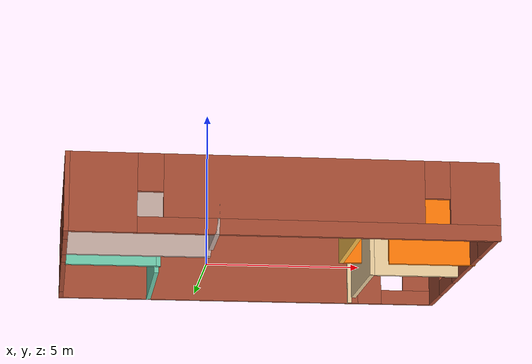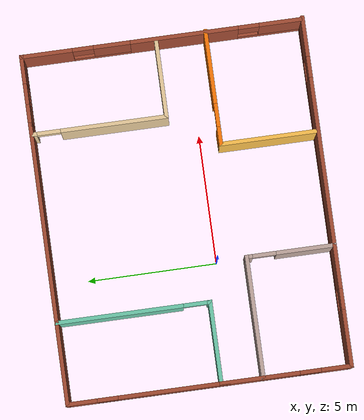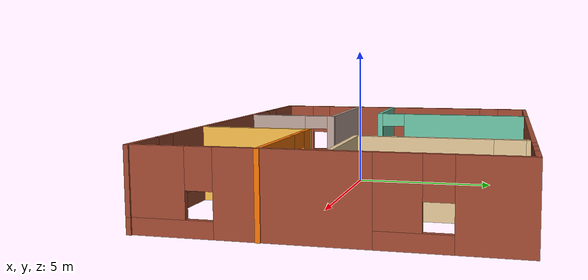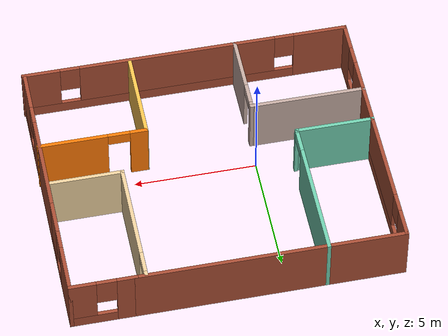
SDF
<?xml version='1.0'?>
<sdf version='1.7'>
  <model name='new_building'>
    <pose>2.035 0.93 0 0 -0 0</pose>
    <link name='Wall_0'>
      <pose>0 -5.4 0 0 -0 0</pose>
      <visual name='Wall_0_Visual_0'>
        <pose>-5.63828 0 1.25 0 -0 0</pose>
        <geometry>
          <box>
            <size>2.22345 0.15 2.5</size>
          </box>
        </geometry>
        <material>
          <script>
            <uri>file://media/materials/scripts/gazebo.material</uri>
            <name>Gazebo/Bricks</name>
          </script>
          <ambient>0.996078 0.47451 0.0196078 1</ambient>
        </material>
        <meta>
          <layer>0</layer>
        </meta>
      </visual>
      <collision name='Wall_0_Collision_0'>
        <geometry>
          <box>
            <size>2.22345 0.15 2.5</size>
          </box>
        </geometry>
        <pose>-5.63828 0 1.25 0 -0 0</pose>
      </collision>
      <visual name='Wall_0_Visual_1'>
        <pose>1.11173 0 0.25 0 -0 0</pose>
        <geometry>
          <box>
            <size>11.2766 0.15 0.5</size>
          </box>
        </geometry>
        <material>
          <script>
            <uri>file://media/materials/scripts/gazebo.material</uri>
            <name>Gazebo/Bricks</name>
          </script>
          <ambient>0.996078 0.47451 0.0196078 1</ambient>
        </material>
        <meta>
          <layer>0</layer>
        </meta>
      </visual>
      <collision name='Wall_0_Collision_1'>
        <geometry>
          <box>
            <size>11.2766 0.15 0.5</size>
          </box>
        </geometry>
        <pose>1.11173 0 0.25 0 -0 0</pose>
      </collision>
      <visual name='Wall_0_Visual_2'>
        <pose>0.325624 0 1.5 0 -0 0</pose>
        <geometry>
          <box>
            <size>8.10435 0.15 2</size>
          </box>
        </geometry>
        <material>
          <script>
            <uri>file://media/materials/scripts/gazebo.material</uri>
            <name>Gazebo/Bricks</name>
          </script>
          <ambient>0.996078 0.47451 0.0196078 1</ambient>
        </material>
        <meta>
          <layer>0</layer>
        </meta>
      </visual>
      <collision name='Wall_0_Collision_2'>
        <geometry>
          <box>
            <size>8.10435 0.15 2</size>
          </box>
        </geometry>
        <pose>0.325624 0 1.5 0 -0 0</pose>
      </collision>
      <visual name='Wall_0_Visual_3'>
        <pose>5.9639 0 1.5 0 -0 0</pose>
        <geometry>
          <box>
            <size>1.5722 0.15 2</size>
          </box>
        </geometry>
        <material>
          <script>
            <uri>file://media/materials/scripts/gazebo.material</uri>
            <name>Gazebo/Bricks</name>
          </script>
          <ambient>0.996078 0.47451 0.0196078 1</ambient>
        </material>
        <meta>
          <layer>0</layer>
        </meta>
      </visual>
      <collision name='Wall_0_Collision_3'>
        <geometry>
          <box>
            <size>1.5722 0.15 2</size>
          </box>
        </geometry>
        <pose>5.9639 0 1.5 0 -0 0</pose>
      </collision>
      <visual name='Wall_0_Visual_4'>
        <pose>-4.12655 0 1.9 0 -0 0</pose>
        <geometry>
          <box>
            <size>0.8 0.15 1.2</size>
          </box>
        </geometry>
        <material>
          <script>
            <uri>file://media/materials/scripts/gazebo.material</uri>
            <name>Gazebo/Bricks</name>
          </script>
          <ambient>0.996078 0.47451 0.0196078 1</ambient>
        </material>
        <meta>
          <layer>0</layer>
        </meta>
      </visual>
      <collision name='Wall_0_Collision_4'>
        <geometry>
          <box>
            <size>0.8 0.15 1.2</size>
          </box>
        </geometry>
        <pose>-4.12655 0 1.9 0 -0 0</pose>
      </collision>
      <visual name='Wall_0_Visual_5'>
        <pose>4.7778 0 1.9 0 -0 0</pose>
        <geometry>
          <box>
            <size>0.8 0.15 1.2</size>
          </box>
        </geometry>
        <material>
          <script>
            <uri>file://media/materials/scripts/gazebo.material</uri>
            <name>Gazebo/Bricks</name>
          </script>
          <ambient>0.996078 0.47451 0.0196078 1</ambient>
        </material>
        <meta>
          <layer>0</layer>
        </meta>
      </visual>
      <collision name='Wall_0_Collision_5'>
        <geometry>
          <box>
            <size>0.8 0.15 1.2</size>
          </box>
        </geometry>
        <pose>4.7778 0 1.9 0 -0 0</pose>
      </collision>
    </link>
    <link name='Wall_10'>
      <pose>-3.575 2.475 0 0 -0 1.5708</pose>
      <visual name='Wall_10_Visual_0'>
        <pose>-2.90343 0 1.25 0 -0 0</pose>
        <geometry>
          <box>
            <size>0.193143 0.15 2.5</size>
          </box>
        </geometry>
        <material>
          <script>
            <uri>file://media/materials/scripts/gazebo.material</uri>
            <name>Gazebo/Grey</name>
          </script>
          <ambient>0.435294 0.796078 0.67451 1</ambient>
        </material>
        <meta>
          <layer>0</layer>
        </meta>
      </visual>
      <collision name='Wall_10_Collision_0'>
        <geometry>
          <box>
            <size>0.193143 0.15 2.5</size>
          </box>
        </geometry>
        <pose>-2.90343 0 1.25 0 -0 0</pose>
      </collision>
      <visual name='Wall_10_Visual_1'>
        <pose>0.546572 0 1.25 0 -0 0</pose>
        <geometry>
          <box>
            <size>4.90686 0.15 2.5</size>
          </box>
        </geometry>
        <material>
          <script>
            <uri>file://media/materials/scripts/gazebo.material</uri>
            <name>Gazebo/Grey</name>
          </script>
          <ambient>0.435294 0.796078 0.67451 1</ambient>
        </material>
        <meta>
          <layer>0</layer>
        </meta>
      </visual>
      <collision name='Wall_10_Collision_1'>
        <geometry>
          <box>
            <size>4.90686 0.15 2.5</size>
          </box>
        </geometry>
        <pose>0.546572 0 1.25 0 -0 0</pose>
      </collision>
      <visual name='Wall_10_Visual_2'>
        <pose>-2.35686 0 2.25 0 -0 0</pose>
        <geometry>
          <box>
            <size>0.9 0.15 0.5</size>
          </box>
        </geometry>
        <material>
          <script>
            <uri>file://media/materials/scripts/gazebo.material</uri>
            <name>Gazebo/Grey</name>
          </script>
          <ambient>0.435294 0.796078 0.67451 1</ambient>
        </material>
        <meta>
          <layer>0</layer>
        </meta>
      </visual>
      <collision name='Wall_10_Collision_2'>
        <geometry>
          <box>
            <size>0.9 0.15 0.5</size>
          </box>
        </geometry>
        <pose>-2.35686 0 2.25 0 -0 0</pose>
      </collision>
    </link>
    <link name='Wall_11'>
      <collision name='Wall_11_Collision'>
        <geometry>
          <box>
            <size>3.25 0.15 2.5</size>
          </box>
        </geometry>
        <pose>0 0 1.25 0 -0 0</pose>
      </collision>
      <visual name='Wall_11_Visual'>
        <pose>0 0 1.25 0 -0 0</pose>
        <geometry>
          <box>
            <size>3.25 0.15 2.5</size>
          </box>
        </geometry>
        <material>
          <script>
            <uri>file://media/materials/scripts/gazebo.material</uri>
            <name>Gazebo/Bricks</name>
          </script>
          <ambient>0.996078 0.47451 0.0196078 1</ambient>
        </material>
        <meta>
          <layer>0</layer>
        </meta>
      </visual>
      <pose>-5.125 5.4 0 0 -0 3.14159</pose>
    </link>
    <link name='Wall_12'>
      <pose>-6.675 2.35 0 0 -0 -1.5708</pose>
      <visual name='Wall_12_Visual_0'>
        <pose>-2.52483 0 1.25 0 -0 0</pose>
        <geometry>
          <box>
            <size>1.20033 0.15 2.5</size>
          </box>
        </geometry>
        <material>
          <script>
            <uri>file://media/materials/scripts/gazebo.material</uri>
            <name>Gazebo/Bricks</name>
          </script>
          <ambient>0.996078 0.47451 0.0196078 1</ambient>
        </material>
        <meta>
          <layer>0</layer>
        </meta>
      </visual>
      <collision name='Wall_12_Collision_0'>
        <geometry>
          <box>
            <size>1.20033 0.15 2.5</size>
          </box>
        </geometry>
        <pose>-2.52483 0 1.25 0 -0 0</pose>
      </collision>
      <visual name='Wall_12_Visual_1'>
        <pose>0.600168 0 0.25 0 -0 0</pose>
        <geometry>
          <box>
            <size>5.04967 0.15 0.5</size>
          </box>
        </geometry>
        <material>
          <script>
            <uri>file://media/materials/scripts/gazebo.material</uri>
            <name>Gazebo/Bricks</name>
          </script>
          <ambient>0.996078 0.47451 0.0196078 1</ambient>
        </material>
        <meta>
          <layer>0</layer>
        </meta>
      </visual>
      <collision name='Wall_12_Collision_1'>
        <geometry>
          <box>
            <size>5.04967 0.15 0.5</size>
          </box>
        </geometry>
        <pose>0.600168 0 0.25 0 -0 0</pose>
      </collision>
      <visual name='Wall_12_Visual_2'>
        <pose>1.00017 0 1.5 0 -0 0</pose>
        <geometry>
          <box>
            <size>4.24967 0.15 2</size>
          </box>
        </geometry>
        <material>
          <script>
            <uri>file://media/materials/scripts/gazebo.material</uri>
            <name>Gazebo/Bricks</name>
          </script>
          <ambient>0.996078 0.47451 0.0196078 1</ambient>
        </material>
        <meta>
          <layer>0</layer>
        </meta>
      </visual>
      <collision name='Wall_12_Collision_2'>
        <geometry>
          <box>
            <size>4.24967 0.15 2</size>
          </box>
        </geometry>
        <pose>1.00017 0 1.5 0 -0 0</pose>
      </collision>
      <visual name='Wall_12_Visual_3'>
        <pose>-1.52466 0 1.9 0 -0 0</pose>
        <geometry>
          <box>
            <size>0.8 0.15 1.2</size>
          </box>
        </geometry>
        <material>
          <script>
            <uri>file://media/materials/scripts/gazebo.material</uri>
            <name>Gazebo/Bricks</name>
          </script>
          <ambient>0.996078 0.47451 0.0196078 1</ambient>
        </material>
        <meta>
          <layer>0</layer>
        </meta>
      </visual>
      <collision name='Wall_12_Collision_3'>
        <geometry>
          <box>
            <size>0.8 0.15 1.2</size>
          </box>
        </geometry>
        <pose>-1.52466 0 1.9 0 -0 0</pose>
      </collision>
    </link>
    <link name='Wall_14'>
      <collision name='Wall_14_Collision'>
        <geometry>
          <box>
            <size>7.75 0.15 2.5</size>
          </box>
        </geometry>
        <pose>0 0 1.25 0 -0 0</pose>
      </collision>
      <visual name='Wall_14_Visual'>
        <pose>0 0 1.25 0 -0 0</pose>
        <geometry>
          <box>
            <size>7.75 0.15 2.5</size>
          </box>
        </geometry>
        <material>
          <script>
            <uri>file://media/materials/scripts/gazebo.material</uri>
            <name>Gazebo/Bricks</name>
          </script>
          <ambient>0.996078 0.47451 0.0196078 1</ambient>
        </material>
        <meta>
          <layer>0</layer>
        </meta>
      </visual>
      <pose>0.225 5.4 0 0 -0 0</pose>
    </link>
    <link name='Wall_15'>
      <pose>5.325 5.4 0 0 -0 0</pose>
      <visual name='Wall_15_Visual_0'>
        <pose>-0.952406 0 1.25 0 -0 0</pose>
        <geometry>
          <box>
            <size>0.845189 0.15 2.5</size>
          </box>
        </geometry>
        <material>
          <script>
            <uri>file://media/materials/scripts/gazebo.material</uri>
            <name>Gazebo/Bricks</name>
          </script>
          <ambient>0.996078 0.47451 0.0196078 1</ambient>
        </material>
        <meta>
          <layer>0</layer>
        </meta>
      </visual>
      <collision name='Wall_15_Collision_0'>
        <geometry>
          <box>
            <size>0.845189 0.15 2.5</size>
          </box>
        </geometry>
        <pose>-0.952406 0 1.25 0 -0 0</pose>
      </collision>
      <visual name='Wall_15_Visual_1'>
        <pose>0.422594 0 0.25 0 -0 0</pose>
        <geometry>
          <box>
            <size>1.90481 0.15 0.5</size>
          </box>
        </geometry>
        <material>
          <script>
            <uri>file://media/materials/scripts/gazebo.material</uri>
            <name>Gazebo/Bricks</name>
          </script>
          <ambient>0.996078 0.47451 0.0196078 1</ambient>
        </material>
        <meta>
          <layer>0</layer>
        </meta>
      </visual>
      <collision name='Wall_15_Collision_1'>
        <geometry>
          <box>
            <size>1.90481 0.15 0.5</size>
          </box>
        </geometry>
        <pose>0.422594 0 0.25 0 -0 0</pose>
      </collision>
      <visual name='Wall_15_Visual_2'>
        <pose>0.822594 0 1.5 0 -0 0</pose>
        <geometry>
          <box>
            <size>1.10481 0.15 2</size>
          </box>
        </geometry>
        <material>
          <script>
            <uri>file://media/materials/scripts/gazebo.material</uri>
            <name>Gazebo/Bricks</name>
          </script>
          <ambient>0.996078 0.47451 0.0196078 1</ambient>
        </material>
        <meta>
          <layer>0</layer>
        </meta>
      </visual>
      <collision name='Wall_15_Collision_2'>
        <geometry>
          <box>
            <size>1.10481 0.15 2</size>
          </box>
        </geometry>
        <pose>0.822594 0 1.5 0 -0 0</pose>
      </collision>
      <visual name='Wall_15_Visual_3'>
        <pose>-0.129811 0 1.9 0 -0 0</pose>
        <geometry>
          <box>
            <size>0.8 0.15 1.2</size>
          </box>
        </geometry>
        <material>
          <script>
            <uri>file://media/materials/scripts/gazebo.material</uri>
            <name>Gazebo/Bricks</name>
          </script>
          <ambient>0.996078 0.47451 0.0196078 1</ambient>
        </material>
        <meta>
          <layer>0</layer>
        </meta>
      </visual>
      <collision name='Wall_15_Collision_3'>
        <geometry>
          <box>
            <size>0.8 0.15 1.2</size>
          </box>
        </geometry>
        <pose>-0.129811 0 1.9 0 -0 0</pose>
      </collision>
    </link>
    <link name='Wall_16'>
      <pose>6.625 3.35 0 0 -0 -1.5708</pose>
      <visual name='Wall_16_Visual_0'>
        <pose>-1.10744 0 1.25 0 -0 0</pose>
        <geometry>
          <box>
            <size>2.03512 0.15 2.5</size>
          </box>
        </geometry>
        <material>
          <script>
            <uri>file://media/materials/scripts/gazebo.material</uri>
            <name>Gazebo/Bricks</name>
          </script>
          <ambient>0.996078 0.47451 0.0196078 1</ambient>
        </material>
        <meta>
          <layer>0</layer>
        </meta>
      </visual>
      <collision name='Wall_16_Collision_0'>
        <geometry>
          <box>
            <size>2.03512 0.15 2.5</size>
          </box>
        </geometry>
        <pose>-1.10744 0 1.25 0 -0 0</pose>
      </collision>
      <visual name='Wall_16_Visual_1'>
        <pose>1.01756 0 0.25 0 -0 0</pose>
        <geometry>
          <box>
            <size>2.21488 0.15 0.5</size>
          </box>
        </geometry>
        <material>
          <script>
            <uri>file://media/materials/scripts/gazebo.material</uri>
            <name>Gazebo/Bricks</name>
          </script>
          <ambient>0.996078 0.47451 0.0196078 1</ambient>
        </material>
        <meta>
          <layer>0</layer>
        </meta>
      </visual>
      <collision name='Wall_16_Collision_1'>
        <geometry>
          <box>
            <size>2.21488 0.15 0.5</size>
          </box>
        </geometry>
        <pose>1.01756 0 0.25 0 -0 0</pose>
      </collision>
      <visual name='Wall_16_Visual_2'>
        <pose>1.41756 0 1.5 0 -0 0</pose>
        <geometry>
          <box>
            <size>1.41488 0.15 2</size>
          </box>
        </geometry>
        <material>
          <script>
            <uri>file://media/materials/scripts/gazebo.material</uri>
            <name>Gazebo/Bricks</name>
          </script>
          <ambient>0.996078 0.47451 0.0196078 1</ambient>
        </material>
        <meta>
          <layer>0</layer>
        </meta>
      </visual>
      <collision name='Wall_16_Collision_2'>
        <geometry>
          <box>
            <size>1.41488 0.15 2</size>
          </box>
        </geometry>
        <pose>1.41756 0 1.5 0 -0 0</pose>
      </collision>
      <visual name='Wall_16_Visual_3'>
        <pose>0.310118 0 1.9 0 -0 0</pose>
        <geometry>
          <box>
            <size>0.8 0.15 1.2</size>
          </box>
        </geometry>
        <material>
          <script>
            <uri>file://media/materials/scripts/gazebo.material</uri>
            <name>Gazebo/Bricks</name>
          </script>
          <ambient>0.996078 0.47451 0.0196078 1</ambient>
        </material>
        <meta>
          <layer>0</layer>
        </meta>
      </visual>
      <collision name='Wall_16_Collision_3'>
        <geometry>
          <box>
            <size>0.8 0.15 1.2</size>
          </box>
        </geometry>
        <pose>0.310118 0 1.9 0 -0 0</pose>
      </collision>
    </link>
    <link name='Wall_17'>
      <pose>6.625 -2 0 0 -0 -1.5708</pose>
      <visual name='Wall_17_Visual_0'>
        <pose>-1.22483 0 1.25 0 -0 0</pose>
        <geometry>
          <box>
            <size>4.30033 0.15 2.5</size>
          </box>
        </geometry>
        <material>
          <script>
            <uri>file://media/materials/scripts/gazebo.material</uri>
            <name>Gazebo/Bricks</name>
          </script>
          <ambient>0.996078 0.47451 0.0196078 1</ambient>
        </material>
        <meta>
          <layer>0</layer>
        </meta>
      </visual>
      <collision name='Wall_17_Collision_0'>
        <geometry>
          <box>
            <size>4.30033 0.15 2.5</size>
          </box>
        </geometry>
        <pose>-1.22483 0 1.25 0 -0 0</pose>
      </collision>
      <visual name='Wall_17_Visual_1'>
        <pose>2.15017 0 0.25 0 -0 0</pose>
        <geometry>
          <box>
            <size>2.44966 0.15 0.5</size>
          </box>
        </geometry>
        <material>
          <script>
            <uri>file://media/materials/scripts/gazebo.material</uri>
            <name>Gazebo/Bricks</name>
          </script>
          <ambient>0.996078 0.47451 0.0196078 1</ambient>
        </material>
        <meta>
          <layer>0</layer>
        </meta>
      </visual>
      <collision name='Wall_17_Collision_1'>
        <geometry>
          <box>
            <size>2.44966 0.15 0.5</size>
          </box>
        </geometry>
        <pose>2.15017 0 0.25 0 -0 0</pose>
      </collision>
      <visual name='Wall_17_Visual_2'>
        <pose>2.55017 0 1.5 0 -0 0</pose>
        <geometry>
          <box>
            <size>1.64966 0.15 2</size>
          </box>
        </geometry>
        <material>
          <script>
            <uri>file://media/materials/scripts/gazebo.material</uri>
            <name>Gazebo/Bricks</name>
          </script>
          <ambient>0.996078 0.47451 0.0196078 1</ambient>
        </material>
        <meta>
          <layer>0</layer>
        </meta>
      </visual>
      <collision name='Wall_17_Collision_2'>
        <geometry>
          <box>
            <size>1.64966 0.15 2</size>
          </box>
        </geometry>
        <pose>2.55017 0 1.5 0 -0 0</pose>
      </collision>
      <visual name='Wall_17_Visual_3'>
        <pose>1.32533 0 1.9 0 -0 0</pose>
        <geometry>
          <box>
            <size>0.8 0.15 1.2</size>
          </box>
        </geometry>
        <material>
          <script>
            <uri>file://media/materials/scripts/gazebo.material</uri>
            <name>Gazebo/Bricks</name>
          </script>
          <ambient>0.996078 0.47451 0.0196078 1</ambient>
        </material>
        <meta>
          <layer>0</layer>
        </meta>
      </visual>
      <collision name='Wall_17_Collision_3'>
        <geometry>
          <box>
            <size>0.8 0.15 1.2</size>
          </box>
        </geometry>
        <pose>1.32533 0 1.9 0 -0 0</pose>
      </collision>
    </link>
    <link name='Wall_19'>
      <pose>3.62997 2.78553 0 0 -0 -1.5708</pose>
      <visual name='Wall_19_Visual_0'>
        <pose>-2.51685 0 1.25 0 -0 0</pose>
        <geometry>
          <box>
            <size>0.216304 0.15 2.5</size>
          </box>
        </geometry>
        <material>
          <script>
            <uri>file://media/materials/scripts/gazebo.material</uri>
            <name>Gazebo/Grey</name>
          </script>
          <ambient>0.921569 0.807843 0.615686 1</ambient>
        </material>
        <meta>
          <layer>0</layer>
        </meta>
      </visual>
      <collision name='Wall_19_Collision_0'>
        <geometry>
          <box>
            <size>0.216304 0.15 2.5</size>
          </box>
        </geometry>
        <pose>-2.51685 0 1.25 0 -0 0</pose>
      </collision>
      <visual name='Wall_19_Visual_1'>
        <pose>0.558152 0 1.25 0 -0 0</pose>
        <geometry>
          <box>
            <size>4.1337 0.15 2.5</size>
          </box>
        </geometry>
        <material>
          <script>
            <uri>file://media/materials/scripts/gazebo.material</uri>
            <name>Gazebo/Grey</name>
          </script>
          <ambient>0.921569 0.807843 0.615686 1</ambient>
        </material>
        <meta>
          <layer>0</layer>
        </meta>
      </visual>
      <collision name='Wall_19_Collision_1'>
        <geometry>
          <box>
            <size>4.1337 0.15 2.5</size>
          </box>
        </geometry>
        <pose>0.558152 0 1.25 0 -0 0</pose>
      </collision>
      <visual name='Wall_19_Visual_2'>
        <pose>-1.9587 0 2.25 0 -0 0</pose>
        <geometry>
          <box>
            <size>0.9 0.15 0.5</size>
          </box>
        </geometry>
        <material>
          <script>
            <uri>file://media/materials/scripts/gazebo.material</uri>
            <name>Gazebo/Grey</name>
          </script>
          <ambient>0.921569 0.807843 0.615686 1</ambient>
        </material>
        <meta>
          <layer>0</layer>
        </meta>
      </visual>
      <collision name='Wall_19_Collision_2'>
        <geometry>
          <box>
            <size>0.9 0.15 0.5</size>
          </box>
        </geometry>
        <pose>-1.9587 0 2.25 0 -0 0</pose>
      </collision>
    </link>
    <link name='Wall_2'>
      <pose>-6.675 -3.725 0 0 -0 1.5708</pose>
      <visual name='Wall_2_Visual_0'>
        <pose>-1.13604 0 1.25 0 -0 0</pose>
        <geometry>
          <box>
            <size>1.22793 0.15 2.5</size>
          </box>
        </geometry>
        <material>
          <script>
            <uri>file://media/materials/scripts/gazebo.material</uri>
            <name>Gazebo/Bricks</name>
          </script>
          <ambient>0.996078 0.47451 0.0196078 1</ambient>
        </material>
        <meta>
          <layer>0</layer>
        </meta>
      </visual>
      <collision name='Wall_2_Collision_0'>
        <geometry>
          <box>
            <size>1.22793 0.15 2.5</size>
          </box>
        </geometry>
        <pose>-1.13604 0 1.25 0 -0 0</pose>
      </collision>
      <visual name='Wall_2_Visual_1'>
        <pose>0.613963 0 0.25 0 -0 0</pose>
        <geometry>
          <box>
            <size>2.27207 0.15 0.5</size>
          </box>
        </geometry>
        <material>
          <script>
            <uri>file://media/materials/scripts/gazebo.material</uri>
            <name>Gazebo/Bricks</name>
          </script>
          <ambient>0.996078 0.47451 0.0196078 1</ambient>
        </material>
        <meta>
          <layer>0</layer>
        </meta>
      </visual>
      <collision name='Wall_2_Collision_1'>
        <geometry>
          <box>
            <size>2.27207 0.15 0.5</size>
          </box>
        </geometry>
        <pose>0.613963 0 0.25 0 -0 0</pose>
      </collision>
      <visual name='Wall_2_Visual_2'>
        <pose>1.01396 0 1.5 0 -0 0</pose>
        <geometry>
          <box>
            <size>1.47207 0.15 2</size>
          </box>
        </geometry>
        <material>
          <script>
            <uri>file://media/materials/scripts/gazebo.material</uri>
            <name>Gazebo/Bricks</name>
          </script>
          <ambient>0.996078 0.47451 0.0196078 1</ambient>
        </material>
        <meta>
          <layer>0</layer>
        </meta>
      </visual>
      <collision name='Wall_2_Collision_2'>
        <geometry>
          <box>
            <size>1.47207 0.15 2</size>
          </box>
        </geometry>
        <pose>1.01396 0 1.5 0 -0 0</pose>
      </collision>
      <visual name='Wall_2_Visual_3'>
        <pose>-0.122074 0 1.9 0 -0 0</pose>
        <geometry>
          <box>
            <size>0.8 0.15 1.2</size>
          </box>
        </geometry>
        <material>
          <script>
            <uri>file://media/materials/scripts/gazebo.material</uri>
            <name>Gazebo/Bricks</name>
          </script>
          <ambient>0.996078 0.47451 0.0196078 1</ambient>
        </material>
        <meta>
          <layer>0</layer>
        </meta>
      </visual>
      <collision name='Wall_2_Collision_3'>
        <geometry>
          <box>
            <size>0.8 0.15 1.2</size>
          </box>
        </geometry>
        <pose>-0.122074 0 1.9 0 -0 0</pose>
      </collision>
    </link>
    <link name='Wall_20'>
      <collision name='Wall_20_Collision'>
        <geometry>
          <box>
            <size>3 0.15 2.5</size>
          </box>
        </geometry>
        <pose>0 0 1.25 0 -0 0</pose>
      </collision>
      <visual name='Wall_20_Visual'>
        <pose>0 0 1.25 0 -0 0</pose>
        <geometry>
          <box>
            <size>3 0.15 2.5</size>
          </box>
        </geometry>
        <material>
          <script>
            <uri>file://media/materials/scripts/gazebo.material</uri>
            <name>Gazebo/Grey</name>
          </script>
          <ambient>0.921569 0.807843 0.615686 1</ambient>
        </material>
        <meta>
          <layer>0</layer>
        </meta>
      </visual>
      <pose>5.05497 0.235534 0 0 -0 0</pose>
    </link>
    <link name='Wall_22'>
      <collision name='Wall_22_Collision'>
        <geometry>
          <box>
            <size>3.75 0.15 2.5</size>
          </box>
        </geometry>
        <pose>0 0 1.25 0 -0 0</pose>
      </collision>
      <visual name='Wall_22_Visual'>
        <pose>0 0 1.25 0 -0 0</pose>
        <geometry>
          <box>
            <size>3.75 0.15 2.5</size>
          </box>
        </geometry>
        <material>
          <script>
            <uri>file://media/materials/scripts/gazebo.material</uri>
            <name>Gazebo/Grey</name>
          </script>
          <ambient>1 0.764706 0.305882 1</ambient>
        </material>
        <meta>
          <layer>0</layer>
        </meta>
      </visual>
      <pose>2.30823 -3.47316 0 0 -0 1.5708</pose>
    </link>
    <link name='Wall_23'>
      <pose>4.48323 -1.67316 0 0 -0 0</pose>
      <visual name='Wall_23_Visual_0'>
        <pose>-1.88098 0 1.25 0 -0 0</pose>
        <geometry>
          <box>
            <size>0.738043 0.15 2.5</size>
          </box>
        </geometry>
        <material>
          <script>
            <uri>file://media/materials/scripts/gazebo.material</uri>
            <name>Gazebo/Grey</name>
          </script>
          <ambient>0.996078 0.47451 0.0196078 1</ambient>
        </material>
        <meta>
          <layer>0</layer>
        </meta>
      </visual>
      <collision name='Wall_23_Collision_0'>
        <geometry>
          <box>
            <size>0.738043 0.15 2.5</size>
          </box>
        </geometry>
        <pose>-1.88098 0 1.25 0 -0 0</pose>
      </collision>
      <visual name='Wall_23_Visual_1'>
        <pose>0.819022 0 1.25 0 -0 0</pose>
        <geometry>
          <box>
            <size>2.86196 0.15 2.5</size>
          </box>
        </geometry>
        <material>
          <script>
            <uri>file://media/materials/scripts/gazebo.material</uri>
            <name>Gazebo/Grey</name>
          </script>
          <ambient>0.996078 0.47451 0.0196078 1</ambient>
        </material>
        <meta>
          <layer>0</layer>
        </meta>
      </visual>
      <collision name='Wall_23_Collision_1'>
        <geometry>
          <box>
            <size>2.86196 0.15 2.5</size>
          </box>
        </geometry>
        <pose>0.819022 0 1.25 0 -0 0</pose>
      </collision>
      <visual name='Wall_23_Visual_2'>
        <pose>-1.06196 0 2.25 0 -0 0</pose>
        <geometry>
          <box>
            <size>0.9 0.15 0.5</size>
          </box>
        </geometry>
        <material>
          <script>
            <uri>file://media/materials/scripts/gazebo.material</uri>
            <name>Gazebo/Grey</name>
          </script>
          <ambient>0.996078 0.47451 0.0196078 1</ambient>
        </material>
        <meta>
          <layer>0</layer>
        </meta>
      </visual>
      <collision name='Wall_23_Collision_2'>
        <geometry>
          <box>
            <size>0.9 0.15 0.5</size>
          </box>
        </geometry>
        <pose>-1.06196 0 2.25 0 -0 0</pose>
      </collision>
    </link>
    <link name='Wall_4'>
      <collision name='Wall_4_Collision'>
        <geometry>
          <box>
            <size>4.75 0.15 2.5</size>
          </box>
        </geometry>
        <pose>0 0 1.25 0 -0 0</pose>
      </collision>
      <visual name='Wall_4_Visual'>
        <pose>0 0 1.25 0 -0 0</pose>
        <geometry>
          <box>
            <size>4.75 0.15 2.5</size>
          </box>
        </geometry>
        <material>
          <script>
            <uri>file://media/materials/scripts/gazebo.material</uri>
            <name>Gazebo/Grey</name>
          </script>
          <ambient>0.760784 0.662745 0.627451 1</ambient>
        </material>
        <meta>
          <layer>0</layer>
        </meta>
      </visual>
      <pose>-4.375 -2.05 0 0 -0 0</pose>
    </link>
    <link name='Wall_6'>
      <pose>-2.075 -3.725 0 0 -0 -1.5708</pose>
      <visual name='Wall_6_Visual_0'>
        <pose>-1.60399 0 1.25 0 -0 0</pose>
        <geometry>
          <box>
            <size>0.292025 0.15 2.5</size>
          </box>
        </geometry>
        <material>
          <script>
            <uri>file://media/materials/scripts/gazebo.material</uri>
            <name>Gazebo/Grey</name>
          </script>
          <ambient>0.760784 0.662745 0.627451 1</ambient>
        </material>
        <meta>
          <layer>0</layer>
        </meta>
      </visual>
      <collision name='Wall_6_Collision_0'>
        <geometry>
          <box>
            <size>0.292025 0.15 2.5</size>
          </box>
        </geometry>
        <pose>-1.60399 0 1.25 0 -0 0</pose>
      </collision>
      <visual name='Wall_6_Visual_1'>
        <pose>0.596013 0 1.25 0 -0 0</pose>
        <geometry>
          <box>
            <size>2.30797 0.15 2.5</size>
          </box>
        </geometry>
        <material>
          <script>
            <uri>file://media/materials/scripts/gazebo.material</uri>
            <name>Gazebo/Grey</name>
          </script>
          <ambient>0.760784 0.662745 0.627451 1</ambient>
        </material>
        <meta>
          <layer>0</layer>
        </meta>
      </visual>
      <collision name='Wall_6_Collision_1'>
        <geometry>
          <box>
            <size>2.30797 0.15 2.5</size>
          </box>
        </geometry>
        <pose>0.596013 0 1.25 0 -0 0</pose>
      </collision>
      <visual name='Wall_6_Visual_2'>
        <pose>-1.00798 0 2.25 0 -0 0</pose>
        <geometry>
          <box>
            <size>0.9 0.15 0.5</size>
          </box>
        </geometry>
        <material>
          <script>
            <uri>file://media/materials/scripts/gazebo.material</uri>
            <name>Gazebo/Grey</name>
          </script>
          <ambient>0.760784 0.662745 0.627451 1</ambient>
        </material>
        <meta>
          <layer>0</layer>
        </meta>
      </visual>
      <collision name='Wall_6_Collision_2'>
        <geometry>
          <box>
            <size>0.9 0.15 0.5</size>
          </box>
        </geometry>
        <pose>-1.00798 0 2.25 0 -0 0</pose>
      </collision>
    </link>
    <link name='Wall_8'>
      <collision name='Wall_8_Collision'>
        <geometry>
          <box>
            <size>1.75 0.15 2.5</size>
          </box>
        </geometry>
        <pose>0 0 1.25 0 -0 0</pose>
      </collision>
      <visual name='Wall_8_Visual'>
        <pose>0 0 1.25 0 -0 0</pose>
        <geometry>
          <box>
            <size>1.75 0.15 2.5</size>
          </box>
        </geometry>
        <material>
          <script>
            <uri>file://media/materials/scripts/gazebo.material</uri>
            <name>Gazebo/Bricks</name>
          </script>
          <ambient>0.996078 0.47451 0.0196078 1</ambient>
        </material>
        <meta>
          <layer>0</layer>
        </meta>
      </visual>
      <pose>-6.675 -1.25 0 0 -0 1.5708</pose>
    </link>
    <link name='Wall_9'>
      <collision name='Wall_9_Collision'>
        <geometry>
          <box>
            <size>3.25 0.15 2.5</size>
          </box>
        </geometry>
        <pose>0 0 1.25 0 -0 0</pose>
      </collision>
      <visual name='Wall_9_Visual'>
        <pose>0 0 1.25 0 -0 0</pose>
        <geometry>
          <box>
            <size>3.25 0.15 2.5</size>
          </box>
        </geometry>
        <material>
          <script>
            <uri>file://media/materials/scripts/gazebo.material</uri>
            <name>Gazebo/Grey</name>
          </script>
          <ambient>0.435294 0.796078 0.67451 1</ambient>
        </material>
        <meta>
          <layer>0</layer>
        </meta>
      </visual>
      <pose>-5.125 -0.45 0 0 -0 0</pose>
    </link>
    <static>1</static>
  </model>
</sdf>
